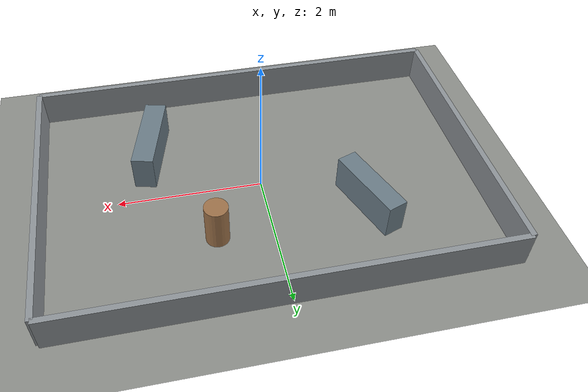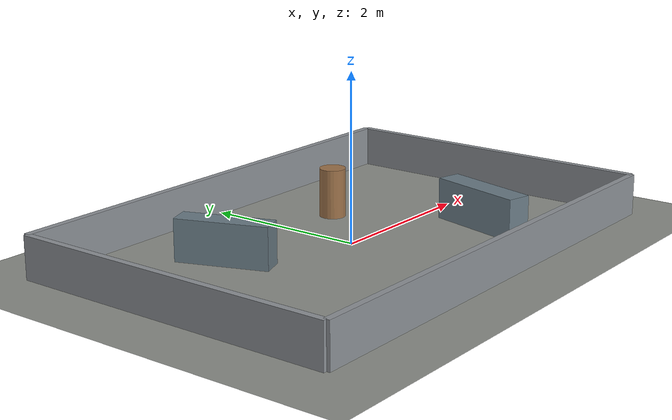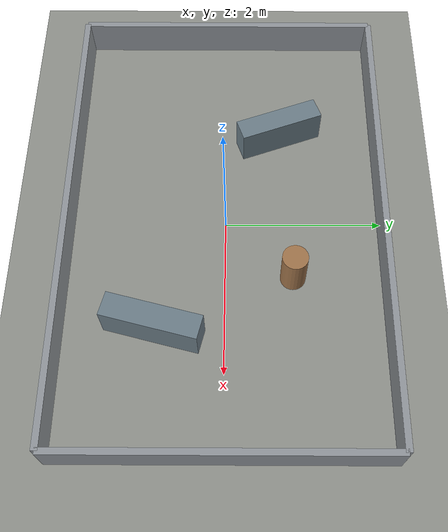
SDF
<?xml version="1.0"?>
<sdf version="1.7">
  <world name="inspection_world">
    <physics name="inspection_physics" type="ode">
      <max_step_size>0.002</max_step_size>
      <real_time_update_rate>500</real_time_update_rate>
      <real_time_factor>1.0</real_time_factor>
    </physics>

    <plugin filename="gz-sim-physics-system" name="gz::sim::systems::Physics"/>
    <plugin filename="gz-sim-user-commands-system" name="gz::sim::systems::UserCommands"/>
    <plugin filename="gz-sim-scene-broadcaster-system" name="gz::sim::systems::SceneBroadcaster"/>
    <plugin filename="gz-sim-sensors-system" name="gz::sim::systems::Sensors">
      <render_engine>ogre2</render_engine>
    </plugin>
    <plugin filename="gz-sim-imu-system" name="gz::sim::systems::Imu"/>

    <scene>
      <ambient>0.75 0.78 0.80 1</ambient>
      <background>0.86 0.88 0.90 1</background>
      <shadows>true</shadows>
    </scene>

    <light name="sun" type="directional">
      <pose>0 0 8 0 0 0</pose>
      <cast_shadows>true</cast_shadows>
      <diffuse>0.9 0.9 0.85 1</diffuse>
      <specular>0.2 0.2 0.2 1</specular>
      <direction>-0.5 0.2 -0.9</direction>
    </light>

    <model name="ground_plane">
      <static>true</static>
      <link name="link">
        <collision name="collision">
          <geometry>
            <plane>
              <normal>0 0 1</normal>
              <size>10 8</size>
            </plane>
          </geometry>
          <surface>
            <friction>
              <ode>
                <mu>2.0</mu>
                <mu2>2.0</mu2>
              </ode>
            </friction>
          </surface>
        </collision>
        <visual name="visual">
          <geometry>
            <plane>
              <normal>0 0 1</normal>
              <size>10 8</size>
            </plane>
          </geometry>
          <material>
            <ambient>0.55 0.56 0.54 1</ambient>
            <diffuse>0.55 0.56 0.54 1</diffuse>
          </material>
        </visual>
      </link>
    </model>

    <model name="inspection_area">
      <static>true</static>
      <link name="walls_and_obstacles">
        <collision name="north_wall_collision">
          <pose>0 2.0 0.25 0 0 0</pose>
          <geometry><box><size>6.0 0.08 0.5</size></box></geometry>
        </collision>
        <visual name="north_wall_visual">
          <pose>0 2.0 0.25 0 0 0</pose>
          <geometry><box><size>6.0 0.08 0.5</size></box></geometry>
          <material><ambient>0.56 0.58 0.60 1</ambient><diffuse>0.56 0.58 0.60 1</diffuse></material>
        </visual>

        <collision name="south_wall_collision">
          <pose>0 -2.0 0.25 0 0 0</pose>
          <geometry><box><size>6.0 0.08 0.5</size></box></geometry>
        </collision>
        <visual name="south_wall_visual">
          <pose>0 -2.0 0.25 0 0 0</pose>
          <geometry><box><size>6.0 0.08 0.5</size></box></geometry>
          <material><ambient>0.56 0.58 0.60 1</ambient><diffuse>0.56 0.58 0.60 1</diffuse></material>
        </visual>

        <collision name="west_wall_collision">
          <pose>-3.0 0 0.25 0 0 0</pose>
          <geometry><box><size>0.08 4.0 0.5</size></box></geometry>
        </collision>
        <visual name="west_wall_visual">
          <pose>-3.0 0 0.25 0 0 0</pose>
          <geometry><box><size>0.08 4.0 0.5</size></box></geometry>
          <material><ambient>0.56 0.58 0.60 1</ambient><diffuse>0.56 0.58 0.60 1</diffuse></material>
        </visual>

        <collision name="east_wall_collision">
          <pose>3.0 0 0.25 0 0 0</pose>
          <geometry><box><size>0.08 4.0 0.5</size></box></geometry>
        </collision>
        <visual name="east_wall_visual">
          <pose>3.0 0 0.25 0 0 0</pose>
          <geometry><box><size>0.08 4.0 0.5</size></box></geometry>
          <material><ambient>0.56 0.58 0.60 1</ambient><diffuse>0.56 0.58 0.60 1</diffuse></material>
        </visual>

        <collision name="inspection_panel_a_collision">
          <pose>-1.35 0.70 0.25 0 0 0.35</pose>
          <geometry><box><size>0.28 1.10 0.50</size></box></geometry>
        </collision>
        <visual name="inspection_panel_a_visual">
          <pose>-1.35 0.70 0.25 0 0 0.35</pose>
          <geometry><box><size>0.28 1.10 0.50</size></box></geometry>
          <material><ambient>0.42 0.49 0.53 1</ambient><diffuse>0.42 0.49 0.53 1</diffuse></material>
        </visual>

        <collision name="inspection_panel_b_collision">
          <pose>1.45 -0.85 0.25 0 0 -0.25</pose>
          <geometry><box><size>0.30 1.20 0.50</size></box></geometry>
        </collision>
        <visual name="inspection_panel_b_visual">
          <pose>1.45 -0.85 0.25 0 0 -0.25</pose>
          <geometry><box><size>0.30 1.20 0.50</size></box></geometry>
          <material><ambient>0.42 0.49 0.53 1</ambient><diffuse>0.42 0.49 0.53 1</diffuse></material>
        </visual>

        <collision name="round_column_collision">
          <pose>0.75 0.85 0.30 0 0 0</pose>
          <geometry><cylinder><radius>0.16</radius><length>0.60</length></cylinder></geometry>
        </collision>
        <visual name="round_column_visual">
          <pose>0.75 0.85 0.30 0 0 0</pose>
          <geometry><cylinder><radius>0.16</radius><length>0.60</length></cylinder></geometry>
          <material><ambient>0.62 0.45 0.29 1</ambient><diffuse>0.62 0.45 0.29 1</diffuse></material>
        </visual>
      </link>
    </model>

  </world>
</sdf>
